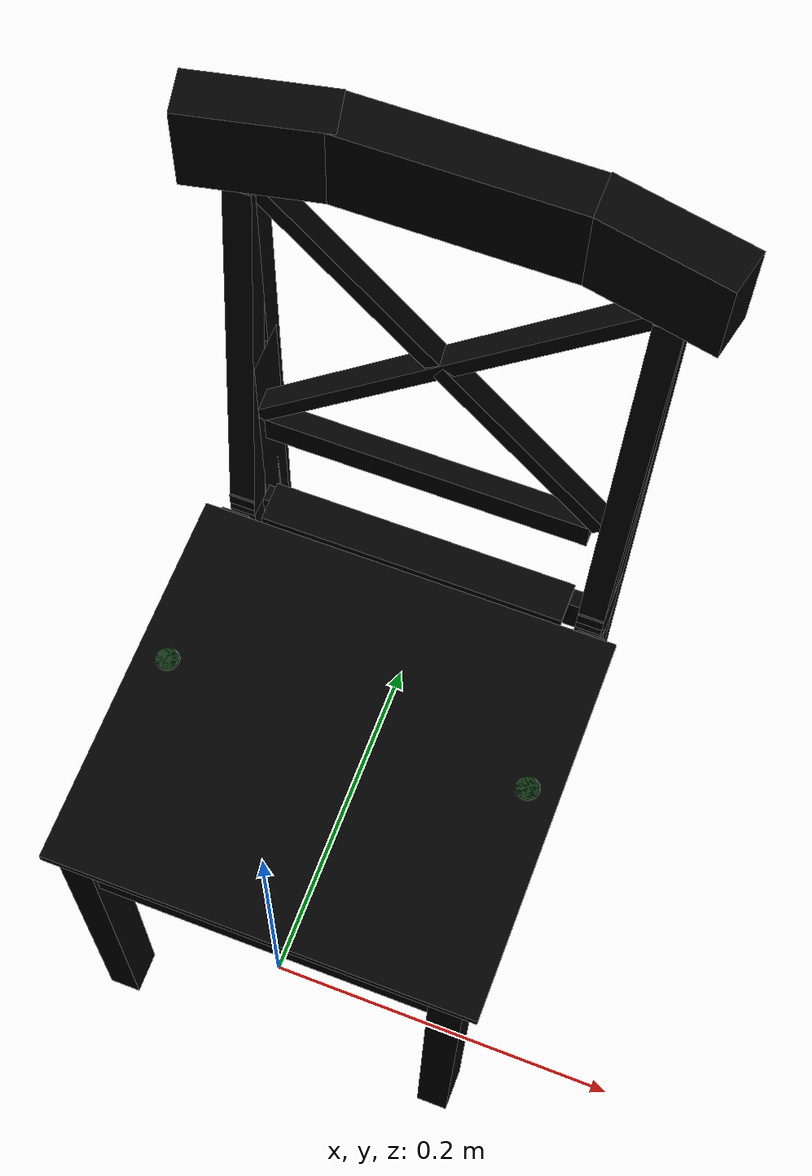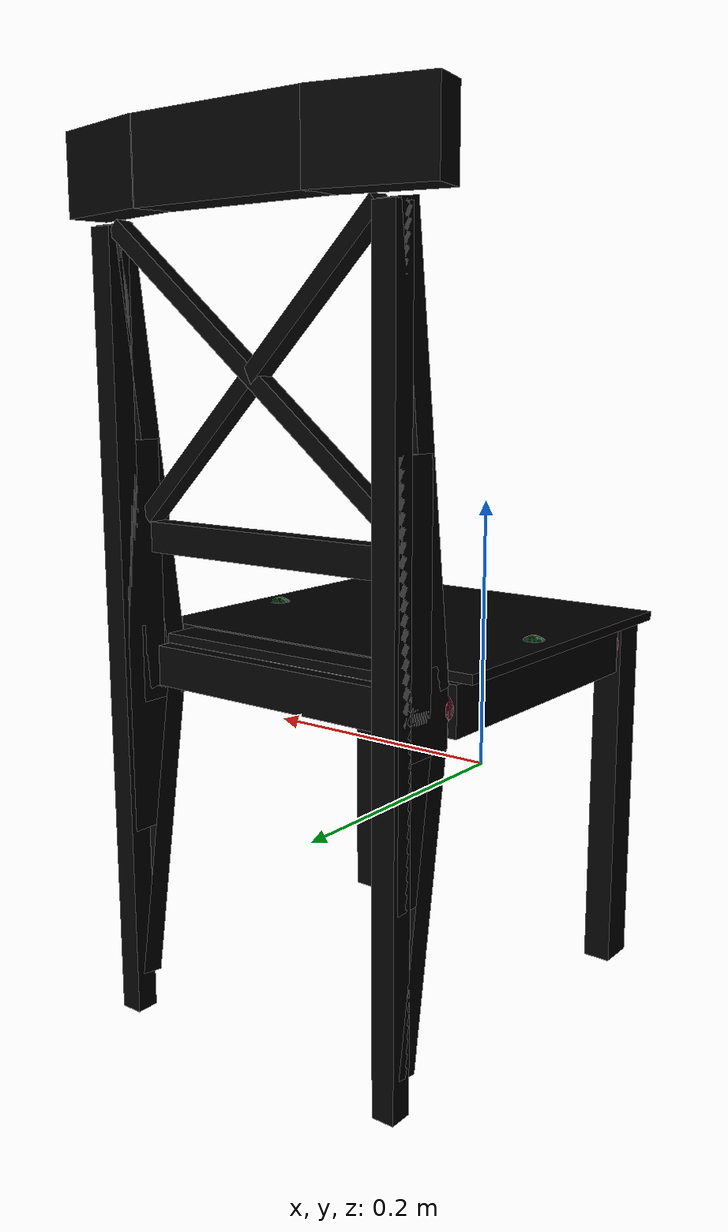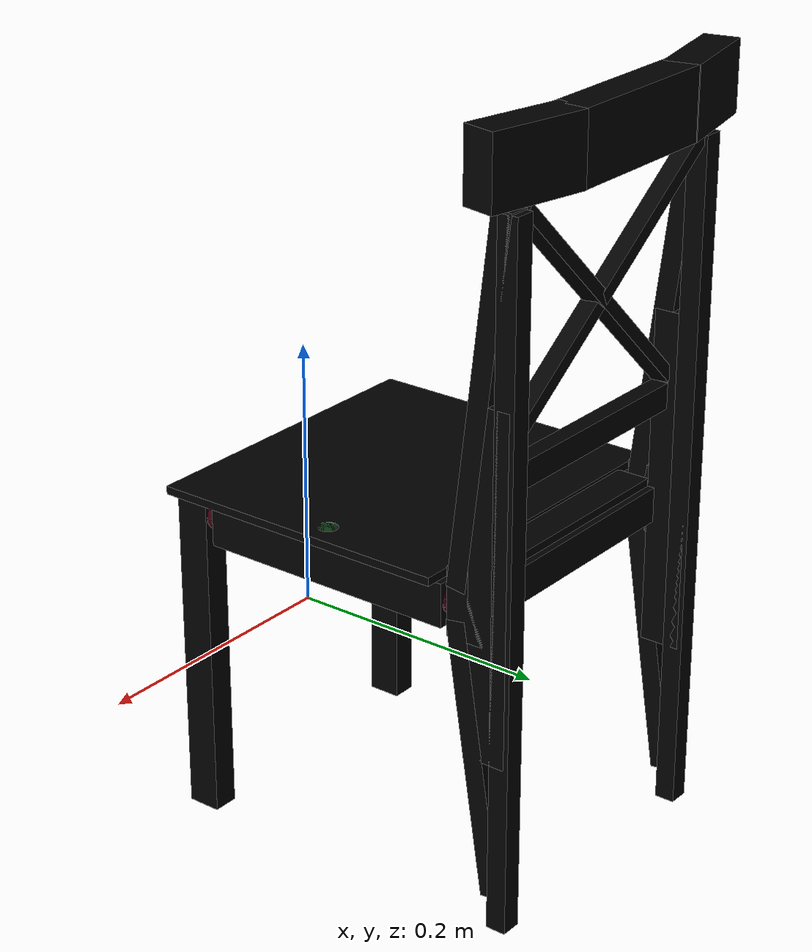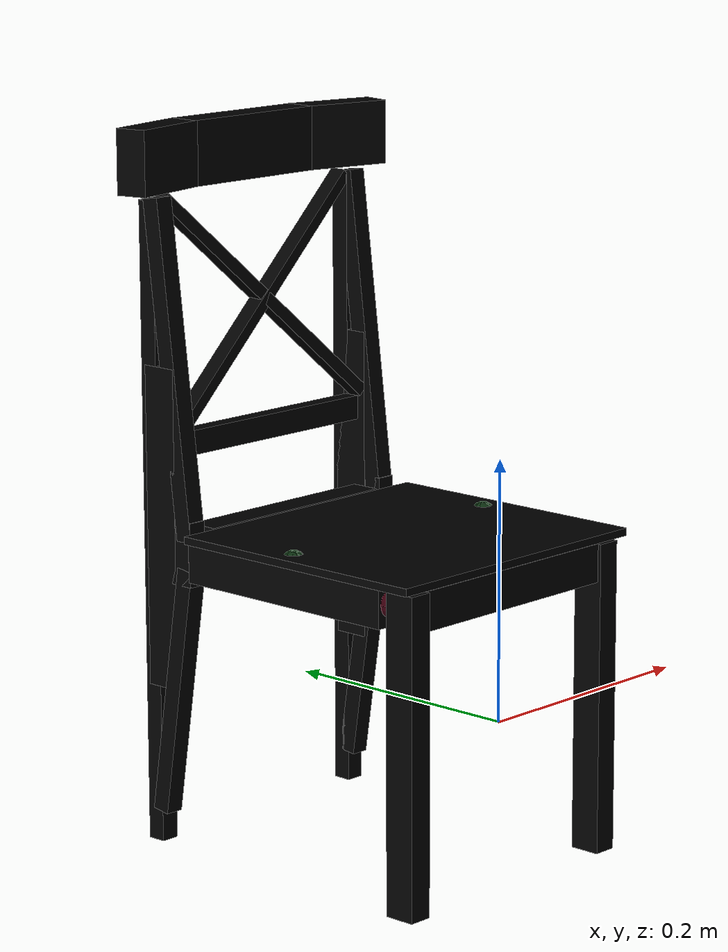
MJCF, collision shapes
<mujoco model="chair_ingolf_0650">
    <custom>
        <numeric data="0.17 0.23 0.007326 0.0 -0.0 0.70709 -0.707124" name="0_part0_initpos"/>
        <numeric data="0.17 -0.22 0.024596 0.0 0.0 -0.698083 0.716017" name="4_part4_initpos"/>
        <numeric data="-0.25 0.107139 0.002981 0.0 0.0 -1.0 -3.8e-05" name="3_part3_initpos"/>
        <numeric data="-0.05 0.094433 0.015668 0.0 1.0 0.0 0.0" name="2_part2_initpos"/>
        <numeric data="-0.45 0.091377 0.015668 0.0 1.0 0.0 0.0" name="1_part1_initpos"/>
    </custom>
    <asset>
        <mesh file="chair_ingolf_0650/0.stl" name="part0" scale="0.0005 0.0005 0.0005"/>
        <mesh file="chair_ingolf_0650/4.stl" name="part4" scale="0.0005 0.0005 0.0005"/>
        <mesh file="chair_ingolf_0650/3.stl" name="part3" scale="0.0005 0.0005 0.0005"/>
        <mesh file="chair_ingolf_0650/2.stl" name="part2" scale="0.0008 0.0005 0.0005"/>
        <mesh file="chair_ingolf_0650/1.stl" name="part1" scale="0.0008 0.0005 0.0005"/>
    </asset>
    <equality>
        <weld active="false" body1="3_part3" body2="2_part2" solimp="1 1 0.5" solref="0.01 0.3"/>
        <weld active="false" body1="3_part3" body2="1_part1" solimp="1 1 0.5" solref="0.01 0.3"/>
        <weld active="false" body1="1_part1" body2="4_part4" solimp="1 1 0.5" solref="0.01 0.3"/>
        <weld active="false" body1="0_part0" body2="1_part1" solimp="1 1 0.5" solref="0.01 0.3"/>
        <weld active="false" body1="2_part2" body2="4_part4" solimp="1 1 0.5" solref="0.01 0.3"/>
        <weld active="false" body1="0_part0" body2="2_part2" solimp="1 1 0.5" solref="0.01 0.3"/>
        <weld active="false" body1="4_part4" body2="2_part2" solimp="1 1 0.5" solref="0.01 0.3"/>
        <weld active="false" body1="4_part4" body2="1_part1" solimp="1 1 0.5" solref="0.01 0.3"/>
        <weld active="false" body1="0_part0" body2="2_part2" solimp="1 1 0.5" solref="0.01 0.3"/>
        <weld active="false" body1="0_part0" body2="1_part1" solimp="1 1 0.5" solref="0.01 0.3"/>
        <weld active="false" body1="3_part3" body2="2_part2" solimp="1 1 0.5" solref="0.01 0.3"/>
        <weld active="false" body1="3_part3" body2="1_part1" solimp="1 1 0.5" solref="0.01 0.3"/>
    </equality>
    <worldbody>
        <body name="0_part0" pos="-1.5e-09 0.0 -0.0" quat="1 0 0 0">
            <site group="1" name="0_part0_ltgt_site0" pos="0.1 0 0.02" rgba="0 0 0 0" size="0.01 0.01 0.01"
                  type="sphere"/>
            <site group="1" name="0_part0_rtgt_site0" pos="0.12 0 0.02" rgba="0 0 0 0" size="0.01 0.01 0.01"
                  type="sphere"/>
            <geom conaffinity="0" contype="0" density="0" mesh="part0" name="0_part0_mesh" pos="0.0 0.0 0.0"
                  rgba="0.82 0.71 0.55 1" type="mesh"/>
            <site name="0_part0_horizontal_radius_site" pos="-1.5e-09 0.0 -0.0" quat="1 0 0 0" rgba="0 0 0 0"
                  size="0.0005"/>
            <site name="0_part0_top_site" pos="-1.5e-09 0.0 0.123825" quat="1 0 0 0" rgba="0 0 0 0" size="0.0005"/>
            <site name="0_part0_bottom_site" pos="-1.5e-09 0.0 -0.123825" quat="1 0 0 0" rgba="0 0 0 0" size="0.0005"/>
            <site name="0_part0_corner_site8" pos="-0.11430000305 0.0182237549 0.123825" quat="1 0 0 0" rgba="0 0 0 0"
                  size="0.01"/>
            <site name="0_part0_corner_site7" pos="0.11430000005 0.0182237549 0.123825" quat="1 0 0 0" rgba="0 0 0 0"
                  size="0.01"/>
            <site name="0_part0_corner_site6" pos="0.11430000005 -0.0182237549 0.123825" quat="1 0 0 0" rgba="0 0 0 0"
                  size="0.01"/>
            <site name="0_part0_corner_site5" pos="-0.11430000305 -0.0182237549 0.123825" quat="1 0 0 0" rgba="0 0 0 0"
                  size="0.01"/>
            <site name="0_part0_corner_site4" pos="-0.11430000305 0.0182237549 -0.123825" quat="1 0 0 0" rgba="0 0 0 0"
                  size="0.01"/>
            <site name="0_part0_corner_site3" pos="0.11430000005 0.0182237549 -0.123825" quat="1 0 0 0" rgba="0 0 0 0"
                  size="0.01"/>
            <site name="0_part0_corner_site2" pos="0.11430000005 -0.0182237549 -0.123825" quat="1 0 0 0" rgba="0 0 0 0"
                  size="0.01"/>
            <site name="0_part0_corner_site1" pos="-0.11430000305 -0.0182237549 -0.123825" quat="1 0 0 0" rgba="0 0 0 0"
                  size="0.01"/>
            <site name="front-side,0,conn_site2" pos="0.10350000000000001 0.0105 0.11" quat="0.7071067 -0.7071068 0 0"
                  rgba="0.9019 0.0980 0.2941 0.3" size="0.01"/>
            <site name="front-side,0,conn_site1" pos="-0.10350000000000001 0.0105 0.11" quat="0.7071067 -0.7071068 0 0"
                  rgba="0.9019 0.0980 0.2941 0.3" size="0.01"/>
            <geom density="50" name="noviz_collision_0_part0_0" pos="0.0 -0.0105 0.107" quat="1 0 0 0" rgba="0 0 0 0"
                  size="0.095 0.005 0.015" solref="0.001 1" type="box"/>
            <geom density="50" name="noviz_collision_0_part0_1" pos="-0.105 -0.00521138 -0.001" quat="1 0 0 0"
                  rgba="0 0 0 0" size="0.0095 0.0125 0.1225" solref="0.001 1" type="box"/>
            <geom density="50" name="noviz_collision_0_part0_2" pos="0.105 -0.00521138 -0.001" quat="1 0 0 0"
                  rgba="0 0 0 0" size="0.0095 0.0125 0.1225" solref="0.001 1" type="box"/>
        </body>
        <body name="4_part4" pos="5.0049999999999995e-08 0.2449632293 0.15647654655" quat="1 0 0 0">
            <geom conaffinity="0" contype="0" density="0" mesh="part4" name="4_part4_mesh" pos="0.0 0.0 0.0"
                  rgba="0.82 0.71 0.55 1" type="mesh"/>
            <site name="4_part4_horizontal_radius_site" pos="0.0 0.0 -0.0" quat="1 0 0 0" rgba="0 0 0 0" size="0.0005"/>
            <site name="4_part4_top_site" pos="0.0 0.0 0.28030154655" quat="1 0 0 0" rgba="0 0 0 0" size="0.0005"/>
            <site name="4_part4_bottom_site" pos="0.0 0.0 -0.28030154655" quat="1 0 0 0" rgba="0 0 0 0" size="0.0005"/>
            <site name="4_part4_corner_site8" pos="-0.13606130715 0.0383969598 0.28030154655" quat="1 0 0 0"
                  rgba="0 0 0 0" size="0.01"/>
            <site name="4_part4_corner_site7" pos="0.13606130715 0.0383969598 0.28030154655" quat="1 0 0 0"
                  rgba="0 0 0 0" size="0.01"/>
            <site name="4_part4_corner_site6" pos="0.13606130715 -0.0383969598 0.28030154655" quat="1 0 0 0"
                  rgba="0 0 0 0" size="0.01"/>
            <site name="4_part4_corner_site5" pos="-0.13606130715 -0.0383969598 0.28030154655" quat="1 0 0 0"
                  rgba="0 0 0 0" size="0.01"/>
            <site name="4_part4_corner_site4" pos="-0.13606130715 0.0383969598 -0.28030154655" quat="1 0 0 0"
                  rgba="0 0 0 0" size="0.01"/>
            <site name="4_part4_corner_site3" pos="0.13606130715 0.0383969598 -0.28030154655" quat="1 0 0 0"
                  rgba="0 0 0 0" size="0.01"/>
            <site name="4_part4_corner_site2" pos="0.13606130715 -0.0383969598 -0.28030154655" quat="1 0 0 0"
                  rgba="0 0 0 0" size="0.01"/>
            <site name="4_part4_corner_site1" pos="-0.13606130715 -0.0383969598 -0.28030154655" quat="1 0 0 0"
                  rgba="0 0 0 0" size="0.01"/>
            <site name="back-side,0,conn_site4" pos="-0.10350005000000001 -0.036463225 -0.047476545"
                  quat="0.7071067 0.7071068 0 0" rgba="0.9019 0.0980 0.2941 0.3" size="0.01"/>
            <site name="back-side,0,conn_site3" pos="0.10349995000000001 -0.036463225 -0.047476545"
                  quat="0 0 -0.7071067 0.7071068" rgba="0.9019 0.0980 0.2941 0.3" size="0.01"/>
            <geom density="50" name="noviz_collision_4_part4_0"
                  pos="0.10499995 0.010036775000000001 -0.028976545000000003" quat="1 0 0 0" rgba="0 0 0 0"
                  size="0.0075 0.0075 0.25" solref="0.001 1" type="box"/>
            <geom density="50" name="noviz_collision_4_part4_1" pos="0.10499995 -0.009963225 0.09402345"
                  quat="0.9981735 -0.06041241 0 0" rgba="0 0 0 0" size="0.0075 0.0075 0.13" solref="0.001 1"
                  type="box"/>
            <geom density="50" name="noviz_collision_4_part4_2" pos="0.10499995 -0.010463225 -0.15597655000000002"
                  quat="0.9970338 0.0769648 0 0" rgba="0 0 0 0" size="0.0075 0.0075 0.1" solref="0.001 1" type="box"/>
            <geom density="50" name="noviz_collision_4_part4_3"
                  pos="0.10499995 -0.0009632250000000001 -0.028976545000000003" quat="1 0 0 0" rgba="0 0 0 0"
                  size="0.0075 0.015 0.125" solref="0.001 1" type="box"/>
            <geom density="50" name="noviz_collision_4_part4_4" pos="0.10499995 -0.014963225 -0.044976545"
                  quat="1 0 0 0" rgba="0 0 0 0" size="0.0075 0.0175 0.025" solref="0.001 1" type="box"/>
            <geom density="50" name="noviz_collision_4_part4_5"
                  pos="-0.10350005000000001 0.010036775000000001 -0.028976545000000003" quat="1 0 0 0" rgba="0 0 0 0"
                  size="0.0075 0.0075 0.25" solref="0.001 1" type="box"/>
            <geom density="50" name="noviz_collision_4_part4_6" pos="-0.10350005000000001 -0.009963225 0.09402345"
                  quat="0.9981735 -0.06041241 0 0" rgba="0 0 0 0" size="0.0075 0.0075 0.13" solref="0.001 1"
                  type="box"/>
            <geom density="50" name="noviz_collision_4_part4_7"
                  pos="-0.10350005000000001 -0.010463225 -0.15597655000000002" quat="0.9970338 0.0769648 0 0"
                  rgba="0 0 0 0" size="0.0075 0.0075 0.1" solref="0.001 1" type="box"/>
            <geom density="50" name="noviz_collision_4_part4_8"
                  pos="-0.10350005000000001 -0.0009632250000000001 -0.028976545000000003" quat="1 0 0 0" rgba="0 0 0 0"
                  size="0.0075 0.015 0.125" solref="0.001 1" type="box"/>
            <geom density="50" name="noviz_collision_4_part4_9" pos="-0.10350005000000001 -0.014963225 -0.044976545"
                  quat="1 0 0 0" rgba="0 0 0 0" size="0.0075 0.0175 0.025" solref="0.001 1" type="box"/>
            <geom density="50" name="noviz_collision_4_part4_10" pos="-0.001008885 -0.01561322 -0.048326545000000005"
                  quat="1 0 0 0" rgba="0 0 0 0" size="0.1 0.005 0.013" solref="0.001 1" type="box"/>
            <geom density="50" name="noviz_collision_4_part4_11"
                  pos="-0.001008885 -0.008413225000000002 0.036323455000000004" quat="1 0 0 0" rgba="0 0 0 0"
                  size="0.0925 0.00625 0.0095" solref="0.001 1" type="box"/>
            <geom density="50" name="noviz_collision_4_part4_12" pos="0.00014995 -0.000213225 0.13497345000000002"
                  quat="0.9340743 -0.01288588 0.3552339 -0.03388295" rgba="0 0 0 0" size="0.13 0.00625 0.005"
                  solref="0.001 1" type="box"/>
            <geom density="50" name="noviz_collision_4_part4_13" pos="0.00014995 -0.000213225 0.13497345000000002"
                  quat="0.9344459 0.04088525 -0.3497861 0.05281232" rgba="0 0 0 0" size="0.13 0.00625 0.005"
                  solref="0.001 1" type="box"/>
            <geom density="50" name="noviz_collision_4_part4_14" pos="-0.001008885 0.017336760000000003 0.25182345"
                  quat="1 0 0 0" rgba="0 0 0 0" size="0.0625 0.0125 0.025" solref="0.001 1" type="box"/>
            <geom density="50" name="noviz_collision_4_part4_15" pos="-0.09550005 0.010336775 0.25182345"
                  quat="0.9944634 0 0 0.1050839" rgba="0 0 0 0" size="0.0375 0.0125 0.025" solref="0.001 1" type="box"/>
            <geom density="50" name="noviz_collision_4_part4_16" pos="0.09559995 0.010336775 0.25182345"
                  quat="0.9944633 0 0 -0.1050842" rgba="0 0 0 0" size="0.0375 0.0125 0.025" solref="0.001 1"
                  type="box"/>
        </body>
        <body name="3_part3" pos="5e-11 0.10560126945000001 0.127" quat="1 0 0 0">
            <geom conaffinity="0" contype="0" density="0" mesh="part3" name="3_part3_mesh" pos="0.0 0.0 0.0"
                  rgba="0.82 0.71 0.55 1" type="mesh"/>
            <site group="1" name="3_part3_ltgt_site0" pos="0.11 -0.08 0" rgba="0 0 0 0" size="0.01 0.01 0.01"
                  type="sphere"/>
            <site group="1" name="3_part3_rtgt_site0" pos="0.13 -0.08 0" rgba="0 0 0 0" size="0.01 0.01 0.01"
                  type="sphere"/>
            <site name="3_part3_horizontal_radius_site" pos="0.0 -0.0 0.0" quat="1 0 0 0" rgba="0 0 0 0" size="0.0005"/>
            <site name="3_part3_top_site" pos="0.0 0.0 0.003175" quat="1 0 0 0" rgba="0 0 0 0" size="0.0005"/>
            <site name="3_part3_bottom_site" pos="0.0 0.0 -0.003175" quat="1 0 0 0" rgba="0 0 0 0" size="0.0005"/>
            <site name="3_part3_corner_site8" pos="-0.12911666665000002 0.130175 0.003175" quat="1 0 0 0" rgba="0 0 0 0"
                  size="0.01"/>
            <site name="3_part3_corner_site7" pos="0.12911666665000002 0.130175 0.003175" quat="1 0 0 0" rgba="0 0 0 0"
                  size="0.01"/>
            <site name="3_part3_corner_site6" pos="0.12911666665000002 -0.130175 0.003175" quat="1 0 0 0" rgba="0 0 0 0"
                  size="0.01"/>
            <site name="3_part3_corner_site5" pos="-0.12911666665000002 -0.130175 0.003175" quat="1 0 0 0"
                  rgba="0 0 0 0" size="0.01"/>
            <site name="3_part3_corner_site4" pos="-0.12911666665000002 0.130175 -0.003175" quat="1 0 0 0"
                  rgba="0 0 0 0" size="0.01"/>
            <site name="3_part3_corner_site3" pos="0.12911666665000002 0.130175 -0.003175" quat="1 0 0 0" rgba="0 0 0 0"
                  size="0.01"/>
            <site name="3_part3_corner_site2" pos="0.12911666665000002 -0.130175 -0.003175" quat="1 0 0 0"
                  rgba="0 0 0 0" size="0.01"/>
            <site name="3_part3_corner_site1" pos="-0.12911666665000002 -0.130175 -0.003175" quat="1 0 0 0"
                  rgba="0 0 0 0" size="0.01"/>
            <site name="seat-side,0,180,conn_site2" pos="-0.105 0.0031749900000000004 -0.004" quat="1 0 0 0"
                  rgba="0.2352 0.7058 0.2941 0.3" size="0.01"/>
            <site name="seat-side,0,180,conn_site1" pos="0.105 0.0031749900000000004 -0.004" quat="1 0 0 0"
                  rgba="0.2352 0.7058 0.2941 0.3" size="0.01"/>
            <geom density="50" name="noviz_collision_3_part3_0" pos="0.0 -0.012601275 0.0" quat="1 0 0 0" rgba="0 0 0 0"
                  size="0.123 0.113 0.003" solref="0.001 1" type="box"/>
            <geom density="50" name="noviz_collision_3_part3_1" pos="0.0 0.115 0.0" quat="1 0 0 0" rgba="0 0 0 0"
                  size="0.09 0.0120 0.003" solref="0.001 1" type="box"/>
        </body>
        <body name="2_part2" pos="0.10715625155 0.11195125805000002 0.10794999705" quat="1 0 0 0">
            <geom conaffinity="0" contype="0" density="0" mesh="part2" name="2_part2_mesh" pos="0.0 0.0 0.0"
                  rgba="0.82 0.71 0.55 1" type="mesh"/>
            <site group="1" name="2_part2_ltgt_site0" pos="0.02 0 -0.01" rgba="0 0 0 0" size="0.01 0.01 0.01"
                  type="sphere"/>
            <site group="1" name="2_part2_rtgt_site0" pos="-0.02 0 -0.01" rgba="0 0 0 0" size="0.01 0.01 0.01"
                  type="sphere"/>
            <site name="2_part2_horizontal_radius_site" pos="0.0 7.5e-10 1e-10" quat="1 0 0 0" rgba="0 0 0 0"
                  size="0.0005"/>
            <site name="2_part2_top_site" pos="0.0 7e-10 0.01587500305" quat="1 0 0 0" rgba="0 0 0 0" size="0.0005"/>
            <site name="2_part2_bottom_site" pos="0.0 7e-10 -0.01587500285" quat="1 0 0 0" rgba="0 0 0 0"
                  size="0.0005"/>
            <site name="2_part2_corner_site8" pos="-0.0047625046 0.09842501215 0.01587500305" quat="1 0 0 0"
                  rgba="0 0 0 0" size="0.01"/>
            <site name="2_part2_corner_site7" pos="0.0047625046 0.09842501215 0.01587500305" quat="1 0 0 0"
                  rgba="0 0 0 0" size="0.01"/>
            <site name="2_part2_corner_site6" pos="0.0047625046 -0.09842501070000001 0.01587500305" quat="1 0 0 0"
                  rgba="0 0 0 0" size="0.01"/>
            <site name="2_part2_corner_site5" pos="-0.0047625046 -0.09842501070000001 0.01587500305" quat="1 0 0 0"
                  rgba="0 0 0 0" size="0.01"/>
            <site name="2_part2_corner_site4" pos="-0.0047625046 0.09842501215 -0.01587500285" quat="1 0 0 0"
                  rgba="0 0 0 0" size="0.01"/>
            <site name="2_part2_corner_site3" pos="0.0047625046 0.09842501215 -0.01587500285" quat="1 0 0 0"
                  rgba="0 0 0 0" size="0.01"/>
            <site name="2_part2_corner_site2" pos="0.0047625046 -0.09842501070000001 -0.01587500285" quat="1 0 0 0"
                  rgba="0 0 0 0" size="0.01"/>
            <site name="2_part2_corner_site1" pos="-0.0047625046 -0.09842501070000001 -0.01587500285" quat="1 0 0 0"
                  rgba="0 0 0 0" size="0.01"/>
            <site name="side-front,0,conn_site1" pos="-0.00365625 0.09654875 0.0010500050000000001"
                  quat="0.7071067 0.7071068 0 0" rgba="0.9019 0.0980 0.2941 0.3" size="0.01"/>
            <site name="side-back,0,conn_site2" pos="-0.00365625 -0.10145125 0.0010500050000000001"
                  quat="0.7071067 -0.7071068 0 0" rgba="0.9019 0.0980 0.2941 0.3" size="0.01"/>
            <site name="side-seat,0,180,conn_site1" pos="-0.00215625 -0.003174995 0.015050005" quat="1 0 0 0"
                  rgba="0.2352 0.7058 0.2941 0.3" size="0.01"/>
            <geom density="50" name="noviz_collision_2_part2_0" pos="0.0 3.65e-05 -8.869e-05" quat="1 0 0 0"
                  rgba="0 0 0 0" size="0.008 0.098 0.01578631" solref="0.001 1" type="box"/>
        </body>
        <body name="1_part1" pos="-0.10715624985 0.11195125805000002 0.10794999705" quat="1 0 0 0">
            <geom conaffinity="0" contype="0" density="0" mesh="part1" name="1_part1_mesh" pos="0.0 0.0 0.0"
                  rgba="0.82 0.71 0.55 1" type="mesh"/>
            <site group="1" name="1_part1_ltgt_site0" pos="0.02 0.0 -0.01" rgba="0 0 0 0" size="0.01 0.01 0.01"
                  type="sphere"/>
            <site group="1" name="1_part1_rtgt_site0" pos="-0.02 0.0 -0.01" rgba="0 0 0 0" size="0.01 0.01 0.01"
                  type="sphere"/>
            <site group="1" name="1_part1_ltgt_site1" pos="0.02 0.06 -0.01" rgba="0 0 0 0" size="0.01 0.01 0.01"
                  type="sphere"/>
            <site group="1" name="1_part1_rtgt_site1" pos="-0.02 0.06 -0.01" rgba="0 0 0 0" size="0.01 0.01 0.01"
                  type="sphere"/>
            <site name="1_part1_horizontal_radius_site" pos="0.0 7.5e-10 1e-10" quat="1 0 0 0" rgba="0 0 0 0"
                  size="0.0005"/>
            <site name="1_part1_top_site" pos="0.0 7e-10 0.01587500305" quat="1 0 0 0" rgba="0 0 0 0" size="0.0005"/>
            <site name="1_part1_bottom_site" pos="0.0 7e-10 -0.01587500285" quat="1 0 0 0" rgba="0 0 0 0"
                  size="0.0005"/>
            <site name="1_part1_corner_site8" pos="-0.0047625003 0.09842501215 0.01587500305" quat="1 0 0 0"
                  rgba="0 0 0 0" size="0.01"/>
            <site name="1_part1_corner_site7" pos="0.0047625003 0.09842501215 0.01587500305" quat="1 0 0 0"
                  rgba="0 0 0 0" size="0.01"/>
            <site name="1_part1_corner_site6" pos="0.0047625003 -0.09842501070000001 0.01587500305" quat="1 0 0 0"
                  rgba="0 0 0 0" size="0.01"/>
            <site name="1_part1_corner_site5" pos="-0.0047625003 -0.09842501070000001 0.01587500305" quat="1 0 0 0"
                  rgba="0 0 0 0" size="0.01"/>
            <site name="1_part1_corner_site4" pos="-0.0047625003 0.09842501215 -0.01587500285" quat="1 0 0 0"
                  rgba="0 0 0 0" size="0.01"/>
            <site name="1_part1_corner_site3" pos="0.0047625003 0.09842501215 -0.01587500285" quat="1 0 0 0"
                  rgba="0 0 0 0" size="0.01"/>
            <site name="1_part1_corner_site2" pos="0.0047625003 -0.09842501070000001 -0.01587500285" quat="1 0 0 0"
                  rgba="0 0 0 0" size="0.01"/>
            <site name="1_part1_corner_site1" pos="-0.0047625003 -0.09842501070000001 -0.01587500285" quat="1 0 0 0"
                  rgba="0 0 0 0" size="0.01"/>
            <site name="side-front,0,conn_site2" pos="0.00365625 0.09654875 0.0010500050000000001"
                  quat="0 0 0.7071067 -0.7071068" rgba="0.9019 0.0980 0.2941 0.3" size="0.01"/>
            <site name="side-back,0,conn_site1" pos="0.00365625 -0.10145125 0.0010500050000000001"
                  quat="0.7071067 -0.7071068 0 0" rgba="0.9019 0.0980 0.2941 0.3" size="0.01"/>
            <site name="side-seat,0,180,conn_site2" pos="0.00215625 -0.003174995 0.015050005" quat="1 0 0 0"
                  rgba="0.2352 0.7058 0.2941 0.3" size="0.01"/>
            <geom density="50" name="noviz_collision_1_part1_0" pos="0.0 3.65e-05 -8.869e-05" quat="1 0 0 0"
                  rgba="0 0 0 0" size="0.008 0.098 0.01578631" solref="0.001 1" type="box"/>
        </body>
    </worldbody>
    <actuator/>
    <sensor/>
    <contact/>
    <default/>
</mujoco>
